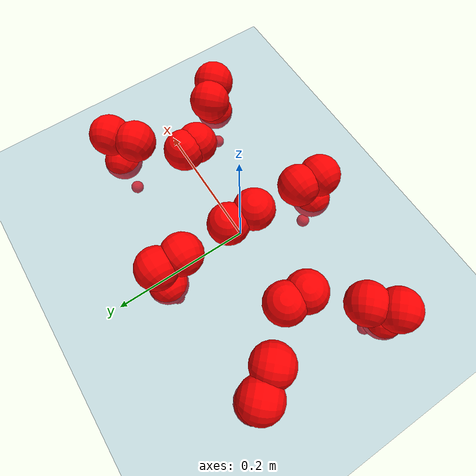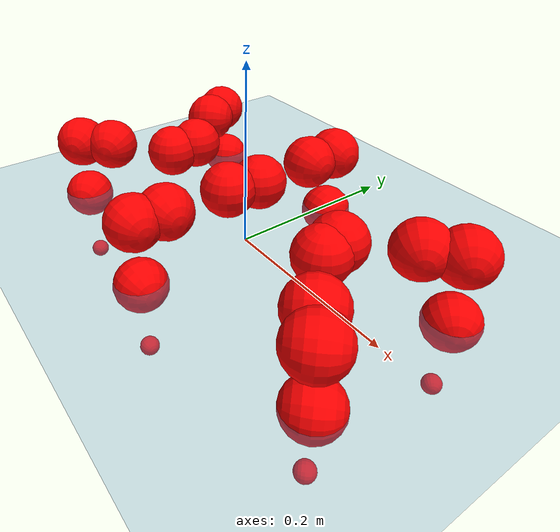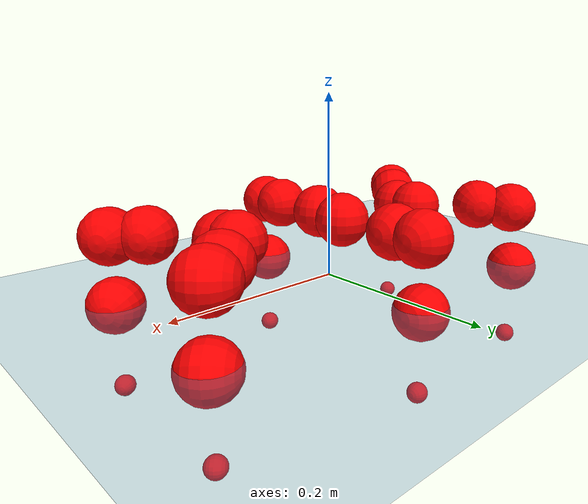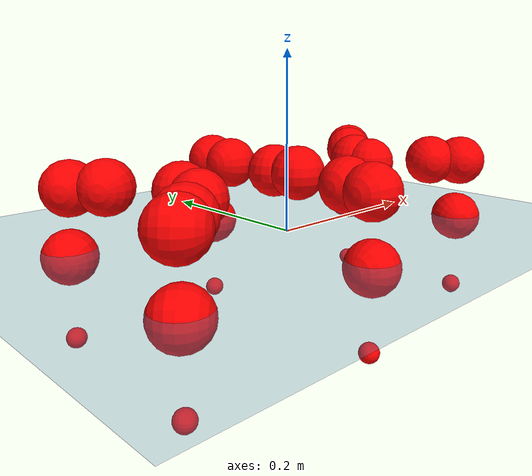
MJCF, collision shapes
<mujoco model="Golem">
  <compiler angle="radian" assetdir="assets" balanceinertia="true" inertiafromgeom="false"/>

  <option timestep="0.005" density="1.2" viscosity="2e-05"/>

  <size nkey="1"/>

  <visual>
    <quality shadowsize="8192"/>
    <map shadowclip="0.5"/>
  </visual>

  <default>
    <default class="/">
      <joint armature="0.01" damping="0.01" frictionloss="0.01"/>
      <geom contype="0" conaffinity="0" group="1" solref="-1000 -80"/>
      <site size="0.01 0.005 0.005" group="5"/>
      <general forcelimited="true" biastype="affine" gainprm="25" biasprm="0 -25 -0.5"/>
      <default class="visual">
        <geom type="mesh" group="2"/>
      </default>
      <default class="collision">
        <geom group="3"/>
      </default>
      <default class="foot">
        <geom size="0.01 0 0" condim="6" group="4" priority="1" solimp="0.015 1 0.01"/>
      </default>
      <default class="reward_collision_sphere">
        <geom group="5" rgba="1 0 0 1"/>
      </default>
    </default>
  </default>

  <asset>
    <texture type="skybox" colorspace="auto" name="//unnamed_texture_0" builtin="gradient" rgb1="0.95 0.95 0.95" rgb2="0.95 0.95 0.95" width="100" height="600"/>
    <texture type="2d" colorspace="auto" name="texplane" builtin="checker" rgb1="0.345 0.575 0.748" rgb2="0.345 0.575 0.748" markrgb="1 1 1" width="512" height="512"/>
    <material name="MatPlane" class="/" texture="texplane" texuniform="true" texrepeat="2 2" specular="0.9"/>
    <mesh name="body" class="/" file="body.stl" scale="0.001 0.001 0.001"/>
    <mesh name="coxa" class="/" file="coxa.stl" scale="0.001 0.001 0.001"/>
    <mesh name="femur" class="/" file="femur.stl" scale="0.001 0.001 0.001"/>
    <mesh name="tibia" class="/" file="tibia.stl" scale="0.001 0.001 0.001"/>
    <mesh name="tarsus" class="/" file="tarsus.stl" scale="0.001 0.001 0.001"/>
  </asset>

  <worldbody>
    <geom name="floor" class="/" size="100 100 0.125" type="plane" group="0" material="MatPlane"/>
    <light name="toplight_shadow" class="/" pos="0 0 5" dir="0.0990148 0.0990148 -0.990148" type="directional" ambient="0.04 0.04 0.04" diffuse="0.55 0.55 0.55" specular="0.12 0.12 0.12"/>
    <light name="toplight_fill" class="/" pos="0 0 5" dir="0.0990148 0.0990148 -0.990148" type="directional" castshadow="false" ambient="0.04 0.04 0.04" diffuse="0.3 0.3 0.3" specular="0.08 0.08 0.08"/>
    <body name="trunk" pos="0.000380886 -0.000429011 0.00189541" quat="1 0.000242093 -0.000331691 5.08039e-05">
      <inertial pos="0.0030295 0.000407094 -0.00244858" quat="1 -0.000210731 0.000786992 -0.000427229" mass="1.46068" diaginertia="0.00423276 5.5657e-05 0.0105465"/>
      <joint name="//unnamed_joint_0" type="free"/>
      <geom name="//unnamed_geom_1" class="/" pos="0 0 0.0642986" quat="1 0 0 0" type="mesh" rgba="0.9 0.9 0.9 1" mesh="body"/>
      <site name="imu" class="/" pos="0.108 -0.0130696 0.0984596" size="0.00732721"/>
      <camera name="track" class="/" pos="0 -0.711273 0" quat="0.707107 0.707107 0 0" mode="trackcom"/>
      <camera name="ego_camera" class="/" pos="0.108922 0 0.100467" quat="-0.5 -0.5 0.5 0.5"/>
      <body name="coxa_RR" pos="-0.148952 -0.0315591 0.0589992" quat="0.382928 -0.000275274 3.43855e-05 -0.923778">
        <inertial pos="-0.00115344 0.000872381 0.00158708" quat="0.999931 0.000246832 0.0115995 0.00173301" mass="0.0785608" diaginertia="0.00418157 5.72813e-05 0.0105546"/>
        <joint name="coxa_joint_RR" class="/" pos="0 0 0" axis="-0.00235288 0.00177511 -0.999996" stiffness="0.00612143" range="-3.17096 3.1318" armature="0.00729709" damping="0" frictionloss="0.00827169"/>
        <geom name="//unnamed_geom_2" class="/" type="mesh" rgba="0.2 0.2 0.2 1" mesh="coxa"/>
        <geom name="//unnamed_geom_3" class="reward_collision_sphere" size="0.0293089" pos="-0.0251358 0 0"/>
        <body name="femur_RR" pos="0.0504404 -0.000154987 0.00244562" quat="0.499786 -0.499866 0.500319 0.500028">
          <inertial pos="-0.00045686 0.00072728 -0.00182254" quat="0.999996 0.00119356 -0.00211684 0.00174104" mass="0.0780722" diaginertia="0.00428987 5.90565e-05 0.00996016"/>
          <joint name="femur_joint_RR" class="/" pos="0 0 0" axis="0.00268324 0.0135643 -0.999904" range="-3.13131 3.12095" armature="0.00704057" damping="0" frictionloss="0.00644016"/>
          <geom name="//unnamed_geom_4" class="/" type="mesh" rgba="0.9 0.9 0.9 1" mesh="femur"/>
          <geom name="//unnamed_geom_5" class="reward_collision_sphere" size="0.0293089"/>
          <body name="tibia_RR" pos="-0.000622307 -0.0389636 0.000194892" quat="-0.000518469 1 -0.00041098 -0.000723682">
            <inertial pos="0.0015526 0.00260553 0.000788749" quat="0.999997 0.000983438 -0.000512496 -0.00226217" mass="0.0802145" diaginertia="0.00400762 5.68008e-05 0.0101134"/>
            <joint name="tibia_joint_RR" class="/" pos="0 0 0" axis="-0.000567685 0.000884799 0.999999" stiffness="0.00962272" range="-3.13713 3.12139" armature="0.00686162" damping="0.00617173" frictionloss="0.00702577"/>
            <geom name="//unnamed_geom_6" class="/" type="mesh" rgba="0.2 0.2 0.2 1" mesh="tibia"/>
            <geom name="//unnamed_geom_7" class="reward_collision_sphere" size="0.0293089"/>
            <body name="tarsus_RR" pos="0.0728482 0.00188573 -0.00106231" quat="0.999999 0.000868233 0.000230306 0.00107268">
              <inertial pos="0.0494068 -0.000231182 0.00106862" quat="0.503278 0.49837 0.501427 0.496899" mass="0.0811624" diaginertia="0.00441152 5.69244e-05 0.0109147"/>
              <joint name="tarsus_joint_RR" class="/" pos="0 0 0" axis="-0.00280947 0.00560629 0.99998" range="-3.19571 3.12422" armature="0.00660479" damping="0.0129753" frictionloss="0.00776833"/>
              <geom name="//unnamed_geom_8" class="/" type="mesh" rgba="0.9 0.9 0.9 1" mesh="tarsus"/>
              <geom name="foot_1" class="foot" size="0.00788869" pos="0.0938405 0 0" quat="0 -0.707107 0 0.707107"/>
              <geom name="//unnamed_geom_10" class="reward_collision_sphere" size="0.0293089"/>
              <geom name="//unnamed_geom_11" class="reward_collision_sphere" size="0.0109908" pos="0.0900701 0 0"/>
              <site name="foot_1" class="foot" pos="0.0938405 0 0" quat="0 -0.707107 0 0.707107" size="0.00732721"/>
            </body>
          </body>
        </body>
      </body>
      <body name="coxa_RM" pos="-0.00378496 -0.0447731 0.0678898" quat="0.707021 -0.000131029 0.000116518 -0.707192">
        <inertial pos="0.00280572 -0.000779679 0.00289754" quat="0.999997 0.00237558 0.000846379 6.72256e-05" mass="0.0756604" diaginertia="0.00401407 5.59566e-05 0.010074"/>
        <joint name="coxa_joint_RM" class="/" pos="0 0 0" axis="0.00346904 0.00132443 -0.999993" range="-3.14586 3.16511" armature="0.00712972" damping="0.0135838" frictionloss="0.00657712"/>
        <geom name="//unnamed_geom_12" class="/" type="mesh" rgba="0.2 0.2 0.2 1" mesh="coxa"/>
        <geom name="//unnamed_geom_13" class="reward_collision_sphere" size="0.0293089" pos="-0.0251358 0 0"/>
        <body name="femur_RM" pos="0.0466381 -0.00304363 -0.00206907" quat="0.500061 -0.500038 0.499985 0.499916">
          <inertial pos="0.00245012 0.00173498 -9.74108e-05" quat="0.999956 0.000168561 0.00644584 0.00678217" mass="0.0833419" diaginertia="0.00423409 5.61766e-05 0.0101063"/>
          <joint name="femur_joint_RM" class="/" pos="0 0 0" axis="-0.0120732 -0.00433711 -0.999918" range="-3.1958 3.16028" armature="0.00740592" damping="0.0204578" frictionloss="0.00815107"/>
          <geom name="//unnamed_geom_14" class="/" type="mesh" rgba="0.9 0.9 0.9 1" mesh="femur"/>
          <geom name="//unnamed_geom_15" class="reward_collision_sphere" size="0.0293089"/>
          <body name="tibia_RM" pos="0.00115479 -0.0337778 -0.00304313" quat="-9.62311e-05 1 -0.000149808 -4.84967e-05">
            <inertial pos="0.00278108 -0.00333442 -0.000743982" quat="0.999985 -0.000542248 0.000137098 -0.00543605" mass="0.0785009" diaginertia="0.00410325 5.5605e-05 0.0102668"/>
            <joint name="tibia_joint_RM" class="/" pos="0 0 0" axis="0.000679866 0.00481042 0.999988" range="-3.11472 3.08361" armature="0.00748269" damping="0.0220224" frictionloss="0.0071447"/>
            <geom name="//unnamed_geom_16" class="/" type="mesh" rgba="0.2 0.2 0.2 1" mesh="tibia"/>
            <geom name="//unnamed_geom_17" class="reward_collision_sphere" size="0.0293089"/>
            <body name="tarsus_RM" pos="0.076439 0.00105658 -0.00128201" quat="1 8.79958e-06 -1.67043e-05 2.31045e-05">
              <inertial pos="0.052947 -0.0018656 0.000343916" quat="0.503344 0.497651 0.506693 0.492191" mass="0.0799406" diaginertia="0.0042674 5.87932e-05 0.00992233"/>
              <joint name="tarsus_joint_RM" class="/" pos="0 0 0" axis="0.000682414 0.00145836 0.999999" stiffness="0.00723599" range="-3.13793 3.19497" armature="0.00699216" damping="0.00808131" frictionloss="0.00700022"/>
              <geom name="//unnamed_geom_18" class="/" type="mesh" rgba="0.9 0.9 0.9 1" mesh="tarsus"/>
              <geom name="foot_2" class="foot" size="0.00743431" pos="0.0938405 0 0" quat="0 -0.707107 0 0.707107"/>
              <geom name="//unnamed_geom_20" class="reward_collision_sphere" size="0.0293089"/>
              <geom name="//unnamed_geom_21" class="reward_collision_sphere" size="0.0109908" pos="0.0900701 0 0"/>
              <site name="foot_2" class="foot" pos="0.0938405 0 0" quat="0 -0.707107 0 0.707107" size="0.00732721"/>
            </body>
          </body>
        </body>
      </body>
      <body name="coxa_RF" pos="0.148478 -0.0284016 0.0624389" quat="0.923954 0.000248148 -0.000604294 -0.382503">
        <inertial pos="-0.00184352 0.00105425 0.00279655" quat="0.999948 -0.00168582 -0.00913318 -0.00432514" mass="0.0765512" diaginertia="0.00424815 5.80626e-05 0.0102435"/>
        <joint name="coxa_joint_RF" class="/" pos="0 0 0" axis="0.00504823 0.000855935 -0.999987" range="-3.19576 3.14562" armature="0.00645215" damping="0.0253653" frictionloss="0.00721282"/>
        <geom name="//unnamed_geom_22" class="/" type="mesh" rgba="0.2 0.2 0.2 1" mesh="coxa"/>
        <geom name="//unnamed_geom_23" class="reward_collision_sphere" size="0.0293089" pos="-0.0251358 0 0"/>
        <body name="femur_RF" pos="0.0484161 -0.00213707 0.00340876" quat="0.499779 -0.500178 0.499968 0.500074">
          <inertial pos="-0.000207542 -0.00194031 0.000425405" quat="1 -0.000156913 -6.95466e-05 0.000251125" mass="0.0772538" diaginertia="0.00402816 5.72686e-05 0.0100972"/>
          <joint name="femur_joint_RF" class="/" pos="0 0 0" axis="0.00471469 -0.0117796 -0.99992" range="-3.09641 3.13938" armature="0.00777943" damping="0" frictionloss="0.00714553"/>
          <geom name="//unnamed_geom_24" class="/" type="mesh" rgba="0.9 0.9 0.9 1" mesh="femur"/>
          <geom name="//unnamed_geom_25" class="reward_collision_sphere" size="0.0293089"/>
          <body name="tibia_RF" pos="0.00098656 -0.0371518 0.00290081" quat="9.84454e-05 1 0.00043416 -0.000887536">
            <inertial pos="0.00123965 0.00277411 -0.00274451" quat="0.999937 -0.0103652 0.0032663 -0.00284585" mass="0.0790878" diaginertia="0.00415167 5.51091e-05 0.00975357"/>
            <joint name="tibia_joint_RF" class="/" pos="0 0 0" axis="-0.00180561 -0.00391661 0.999991" stiffness="0.00520794" range="-3.17291 3.15334" armature="0.00633629" damping="0.00561351" frictionloss="0.00738187"/>
            <geom name="//unnamed_geom_26" class="/" type="mesh" rgba="0.2 0.2 0.2 1" mesh="tibia"/>
            <geom name="//unnamed_geom_27" class="reward_collision_sphere" size="0.0293089"/>
            <body name="tarsus_RF" pos="0.0710423 -0.000283663 -0.00266605" quat="1 0.000254344 -3.78452e-05 0.000113759">
              <inertial pos="0.0501952 -0.000521569 -0.000670779" quat="0.49555 0.4961 0.500901 0.507359" mass="0.0758362" diaginertia="0.00414027 5.62292e-05 0.0101044"/>
              <joint name="tarsus_joint_RF" class="/" pos="0 0 0" axis="-2.8511e-05 -0.000189808 1" stiffness="0.00147027" range="-3.13925 3.1789" armature="0.00742311" damping="0.0167529" frictionloss="0.00815502"/>
              <geom name="//unnamed_geom_28" class="/" type="mesh" rgba="0.9 0.9 0.9 1" mesh="tarsus"/>
              <geom name="foot_3" class="foot" size="0.00794652" pos="0.0938405 0 0" quat="0 -0.707107 0 0.707107"/>
              <geom name="//unnamed_geom_30" class="reward_collision_sphere" size="0.0293089"/>
              <geom name="//unnamed_geom_31" class="reward_collision_sphere" size="0.0109908" pos="0.0900701 0 0"/>
              <site name="foot_3" class="foot" pos="0.0938405 0 0" quat="0 -0.707107 0 0.707107" size="0.00732721"/>
            </body>
          </body>
        </body>
      </body>
      <body name="coxa_LR" pos="-0.146516 0.0354518 0.0617634" quat="0.382443 8.3884e-05 8.10376e-05 0.923979">
        <inertial pos="0.000790084 -0.00194378 -0.00240715" quat="0.999963 -0.00392145 0.00614524 -0.00450257" mass="0.0804997" diaginertia="0.0042545 5.79133e-05 0.0104217"/>
        <joint name="coxa_joint_LR" class="/" pos="0 0 0" axis="0.000703172 -0.000516922 -1" range="-3.17 3.13247" armature="0.00625819" damping="0.0152921" frictionloss="0.00763323"/>
        <geom name="//unnamed_geom_32" class="/" type="mesh" rgba="0.2 0.2 0.2 1" mesh="coxa"/>
        <geom name="//unnamed_geom_33" class="reward_collision_sphere" size="0.0293089" pos="-0.0251358 0 0"/>
        <body name="femur_LR" pos="0.0496876 -0.00232428 0.00223938" quat="0.499935 -0.499895 0.499898 0.500271">
          <inertial pos="0.00278575 -0.000673919 -0.00159073" quat="0.999991 0.00403918 0.000311541 0.00157519" mass="0.0782315" diaginertia="0.00414423 5.67812e-05 0.0106417"/>
          <joint name="femur_joint_LR" class="/" pos="0 0 0" axis="0.00177659 0.00172146 0.999997" range="-3.08409 3.12062" armature="0.00765103" damping="0.00828473" frictionloss="0.00713634"/>
          <geom name="//unnamed_geom_34" class="/" type="mesh" rgba="0.9 0.9 0.9 1" mesh="femur"/>
          <geom name="//unnamed_geom_35" class="reward_collision_sphere" size="0.0293089"/>
          <body name="tibia_LR" pos="0.00249183 -0.0391222 -0.00682167" quat="-9.84705e-05 1 -0.000238617 5.87861e-05">
            <inertial pos="0.0027894 -0.00382825 0.00396606" quat="0.999944 -0.0067469 0.00402015 -0.0071123" mass="0.0748094" diaginertia="0.00406402 5.74668e-05 0.010103"/>
            <joint name="tibia_joint_LR" class="/" pos="0 0 0" axis="0.001253 -0.00311311 -0.999994" range="-3.09421 3.12192" armature="0.007289" damping="0.0106305" frictionloss="0.00632019"/>
            <geom name="//unnamed_geom_36" class="/" type="mesh" rgba="0.2 0.2 0.2 1" mesh="tibia"/>
            <geom name="//unnamed_geom_37" class="reward_collision_sphere" size="0.0293089"/>
            <body name="tarsus_LR" pos="0.0731044 0.00588999 0.00358447" quat="0.999999 -0.000633283 0.000481947 -0.000619335">
              <inertial pos="0.0498375 -0.00180757 -0.000920116" quat="0.501897 0.4958 0.501799 0.500479" mass="0.0803338" diaginertia="0.00422068 5.60124e-05 0.0103075"/>
              <joint name="tarsus_joint_LR" class="/" pos="0 0 0" axis="0.0120945 0.00113456 -0.999926" range="-3.13272 3.13069" armature="0.00741317" damping="0.0152467" frictionloss="0.00755632"/>
              <geom name="//unnamed_geom_38" class="/" type="mesh" rgba="0.9 0.9 0.9 1" mesh="tarsus"/>
              <geom name="foot_4" class="foot" size="0.00708963" pos="0.0938405 0 0" quat="0.707107 0 -0.707107 0"/>
              <geom name="//unnamed_geom_40" class="reward_collision_sphere" size="0.0293089"/>
              <geom name="//unnamed_geom_41" class="reward_collision_sphere" size="0.0109908" pos="0.0900701 0 0"/>
              <site name="foot_4" class="foot" pos="0.0938405 0 0" quat="0.707107 0 -0.707107 0" size="0.00732721"/>
            </body>
          </body>
        </body>
      </body>
      <body name="coxa_LM" pos="-0.00174828 0.0446188 0.0651453" quat="0.707253 -3.9493e-05 0.000438661 0.706961">
        <inertial pos="-0.00247624 -0.00032512 0.00264123" quat="1 4.83641e-06 -1.78334e-05 6.2715e-06" mass="0.0751917" diaginertia="0.00405617 5.63455e-05 0.0104665"/>
        <joint name="coxa_joint_LM" class="/" pos="0 0 0" axis="-0.00106035 -0.00308069 -0.999995" range="-3.16763 3.11151" armature="0.00643663" damping="0.0161763" frictionloss="0.00792392"/>
        <geom name="//unnamed_geom_42" class="/" type="mesh" rgba="0.2 0.2 0.2 1" mesh="coxa"/>
        <geom name="//unnamed_geom_43" class="reward_collision_sphere" size="0.0293089" pos="-0.0251358 0 0"/>
        <body name="femur_LM" pos="0.0478802 0.00262329 0.000265012" quat="0.500106 -0.499936 0.499911 0.500047">
          <inertial pos="0.000252182 -0.0020879 -0.00031978" quat="0.999916 -0.0092907 0.00891219 0.00113871" mass="0.0769358" diaginertia="0.00402042 5.63449e-05 0.010141"/>
          <joint name="femur_joint_LM" class="/" pos="0 0 0" axis="-0.0135347 0.00555681 0.999893" stiffness="0.0114074" range="-3.10218 3.14611" armature="0.00624554" damping="0.0137039" frictionloss="0.00822184"/>
          <geom name="//unnamed_geom_44" class="/" type="mesh" rgba="0.9 0.9 0.9 1" mesh="femur"/>
          <geom name="//unnamed_geom_45" class="reward_collision_sphere" size="0.0293089"/>
          <body name="tibia_LM" pos="-0.000666833 -0.0362668 -0.00111815" quat="0.000210928 1 8.94982e-05 -0.000160813">
            <inertial pos="0.000113993 -0.00098487 -1.78445e-05" quat="1 0.000417383 -0.000183951 -0.000303379" mass="0.0816919" diaginertia="0.00412854 5.71702e-05 0.0103792"/>
            <joint name="tibia_joint_LM" class="/" pos="0 0 0" axis="-0.00220491 -0.00186238 -0.999996" stiffness="0.005297" range="-3.10069 3.14531" armature="0.00752864" damping="0.00197387" frictionloss="0.00634684"/>
            <geom name="//unnamed_geom_46" class="/" type="mesh" rgba="0.2 0.2 0.2 1" mesh="tibia"/>
            <geom name="//unnamed_geom_47" class="reward_collision_sphere" size="0.0293089"/>
            <body name="tarsus_LM" pos="0.0771992 -0.000784711 -0.00297444" quat="1 0.000161138 0.000405585 1.97374e-05">
              <inertial pos="0.0476832 -0.00157679 -0.000240669" quat="0.499989 0.499923 0.500032 0.500056" mass="0.0771286" diaginertia="0.00416325 5.76803e-05 0.0105386"/>
              <joint name="tarsus_joint_LM" class="/" pos="0 0 0" axis="-0.00644039 0.0038494 -0.999972" range="-3.09516 3.09795" armature="0.00738463" damping="0.00284055" frictionloss="0.00679572"/>
              <geom name="//unnamed_geom_48" class="/" type="mesh" rgba="0.9 0.9 0.9 1" mesh="tarsus"/>
              <geom name="foot_5" class="foot" size="0.00759912" pos="0.0938405 0 0" quat="0.707107 0 -0.707107 0"/>
              <geom name="//unnamed_geom_50" class="reward_collision_sphere" size="0.0293089"/>
              <geom name="//unnamed_geom_51" class="reward_collision_sphere" size="0.0109908" pos="0.0900701 0 0"/>
              <site name="foot_5" class="foot" pos="0.0938405 0 0" quat="0.707107 0 -0.707107 0" size="0.00732721"/>
            </body>
          </body>
        </body>
      </body>
      <body name="coxa_LF" pos="0.145822 0.0288439 0.065478" quat="0.9241 0.00116418 0.000454353 0.382148">
        <inertial pos="-0.000268524 -0.00196957 -0.000310182" quat="0.999954 -0.00608473 0.00172883 0.00720651" mass="0.0760056" diaginertia="0.00402292 5.4865e-05 0.00995847"/>
        <joint name="coxa_joint_LF" class="/" pos="0 0 0" axis="0.00466515 -0.00177903 -0.999988" range="-3.18397 3.08544" armature="0.00753016" damping="0.00267935" frictionloss="0.00834038"/>
        <geom name="//unnamed_geom_52" class="/" type="mesh" rgba="0.2 0.2 0.2 1" mesh="coxa"/>
        <geom name="//unnamed_geom_53" class="reward_collision_sphere" size="0.0293089" pos="-0.0251358 0 0"/>
        <body name="femur_LF" pos="0.0474079 0.000643828 0.000756227" quat="0.499123 -0.499675 0.500313 0.500887">
          <inertial pos="0.00137755 -0.00034061 -0.000499497" quat="0.999995 -0.0015974 -0.00248848 -0.00143147" mass="0.0793096" diaginertia="0.00402855 5.68764e-05 0.00996612"/>
          <joint name="femur_joint_LF" class="/" pos="0 0 0" axis="-0.0121564 -0.00770144 0.999896" range="-3.15849 3.08291" armature="0.00749568" damping="0.0110163" frictionloss="0.00767855"/>
          <geom name="//unnamed_geom_54" class="/" type="mesh" rgba="0.9 0.9 0.9 1" mesh="femur"/>
          <geom name="//unnamed_geom_55" class="reward_collision_sphere" size="0.0293089"/>
          <body name="tibia_LF" pos="0.000737581 -0.0389221 -0.00323989" quat="0.000191593 1 -0.000228426 5.09762e-05">
            <inertial pos="0.0012271 -5.11234e-05 -0.00109826" quat="0.999903 0.00608084 0.00160781 -0.0124325" mass="0.0807881" diaginertia="0.00399327 5.47446e-05 0.00985438"/>
            <joint name="tibia_joint_LF" class="/" pos="0 0 0" axis="0.0139613 0.00297469 -0.999898" stiffness="0.0045716" range="-3.13151 3.12285" armature="0.00842086" damping="0.00667173" frictionloss="0.00648054"/>
            <geom name="//unnamed_geom_56" class="/" type="mesh" rgba="0.2 0.2 0.2 1" mesh="tibia"/>
            <geom name="//unnamed_geom_57" class="reward_collision_sphere" size="0.0293089"/>
            <body name="tarsus_LF" pos="0.0760744 0.00226728 0.00244503" quat="1 -0.00038259 5.0888e-05 -0.000131987">
              <inertial pos="0.0484383 0.00118209 -0.000278369" quat="0.500993 0.50049 0.49876 0.499754" mass="0.0747481" diaginertia="0.00410899 5.50707e-05 0.00987676"/>
              <joint name="tarsus_joint_LF" class="/" pos="0 0 0" axis="0.00977321 -0.00196225 -0.99995" stiffness="0.0354024" range="-3.13352 3.19099" armature="0.00759481" damping="0.0304409" frictionloss="0.00746814"/>
              <geom name="//unnamed_geom_58" class="/" type="mesh" rgba="0.9 0.9 0.9 1" mesh="tarsus"/>
              <geom name="foot_6" class="foot" size="0.00737006" pos="0.0938405 0 0" quat="0.707107 0 -0.707107 0"/>
              <geom name="//unnamed_geom_60" class="reward_collision_sphere" size="0.0293089"/>
              <geom name="//unnamed_geom_61" class="reward_collision_sphere" size="0.0109908" pos="0.0900701 0 0"/>
              <site name="foot_6" class="foot" pos="0.0938405 0 0" quat="0.707107 0 -0.707107 0" size="0.00732721"/>
            </body>
          </body>
        </body>
      </body>
    </body>
  </worldbody>

  <contact>
    <pair class="/" geom1="floor" geom2="foot_1" name="//unnamed_contact_0"/>
    <pair class="/" geom1="floor" geom2="foot_2" name="//unnamed_contact_1"/>
    <pair class="/" geom1="floor" geom2="foot_3" name="//unnamed_contact_2"/>
    <pair class="/" geom1="floor" geom2="foot_4" name="//unnamed_contact_3"/>
    <pair class="/" geom1="floor" geom2="foot_5" name="//unnamed_contact_4"/>
    <pair class="/" geom1="floor" geom2="foot_6" name="//unnamed_contact_5"/>
  </contact>

  <actuator>
    <general name="coxa_joint_RR" class="/" joint="coxa_joint_RR" forcerange="-5.75864 5.75864" gainprm="18.4491" biasprm="0 -18.4491 -0.374512"/>
    <general name="femur_joint_RR" class="/" joint="femur_joint_RR" forcerange="-5.9114 5.9114" gainprm="18.4491" biasprm="0 -18.4491 -0.374512"/>
    <general name="tibia_joint_RR" class="/" joint="tibia_joint_RR" forcerange="-4.96783 4.96783" gainprm="18.4491" biasprm="0 -18.4491 -0.374512"/>
    <general name="tarsus_joint_RR" class="/" joint="tarsus_joint_RR" forcerange="-5.60895 5.60895" gainprm="18.4491" biasprm="0 -18.4491 -0.374512"/>
    <general name="coxa_joint_RM" class="/" joint="coxa_joint_RM" forcerange="-5.743 5.743" gainprm="18.4491" biasprm="0 -18.4491 -0.374512"/>
    <general name="femur_joint_RM" class="/" joint="femur_joint_RM" forcerange="-5.61001 5.61001" gainprm="18.4491" biasprm="0 -18.4491 -0.374512"/>
    <general name="tibia_joint_RM" class="/" joint="tibia_joint_RM" forcerange="-4.78449 4.78449" gainprm="18.4491" biasprm="0 -18.4491 -0.374512"/>
    <general name="tarsus_joint_RM" class="/" joint="tarsus_joint_RM" forcerange="-5.26079 5.26079" gainprm="18.4491" biasprm="0 -18.4491 -0.374512"/>
    <general name="coxa_joint_RF" class="/" joint="coxa_joint_RF" forcerange="-5.46119 5.46119" gainprm="18.4491" biasprm="0 -18.4491 -0.374512"/>
    <general name="femur_joint_RF" class="/" joint="femur_joint_RF" forcerange="-5.24576 5.24576" gainprm="18.4491" biasprm="0 -18.4491 -0.374512"/>
    <general name="tibia_joint_RF" class="/" joint="tibia_joint_RF" forcerange="-4.7904 4.7904" gainprm="18.4491" biasprm="0 -18.4491 -0.374512"/>
    <general name="tarsus_joint_RF" class="/" joint="tarsus_joint_RF" forcerange="-5.17969 5.17969" gainprm="18.4491" biasprm="0 -18.4491 -0.374512"/>
    <general name="coxa_joint_LR" class="/" joint="coxa_joint_LR" forcerange="-5.91092 5.91092" gainprm="18.4491" biasprm="0 -18.4491 -0.374512"/>
    <general name="femur_joint_LR" class="/" joint="femur_joint_LR" forcerange="-4.90761 4.90761" gainprm="18.4491" biasprm="0 -18.4491 -0.374512"/>
    <general name="tibia_joint_LR" class="/" joint="tibia_joint_LR" forcerange="-4.78693 4.78693" gainprm="18.4491" biasprm="0 -18.4491 -0.374512"/>
    <general name="tarsus_joint_LR" class="/" joint="tarsus_joint_LR" forcerange="-5.28799 5.28799" gainprm="18.4491" biasprm="0 -18.4491 -0.374512"/>
    <general name="coxa_joint_LM" class="/" joint="coxa_joint_LM" forcerange="-5.40947 5.40947" gainprm="18.4491" biasprm="0 -18.4491 -0.374512"/>
    <general name="femur_joint_LM" class="/" joint="femur_joint_LM" forcerange="-5.36636 5.36636" gainprm="18.4491" biasprm="0 -18.4491 -0.374512"/>
    <general name="tibia_joint_LM" class="/" joint="tibia_joint_LM" forcerange="-5.42395 5.42395" gainprm="18.4491" biasprm="0 -18.4491 -0.374512"/>
    <general name="tarsus_joint_LM" class="/" joint="tarsus_joint_LM" forcerange="-5.33391 5.33391" gainprm="18.4491" biasprm="0 -18.4491 -0.374512"/>
    <general name="coxa_joint_LF" class="/" joint="coxa_joint_LF" forcerange="-5.59724 5.59724" gainprm="18.4491" biasprm="0 -18.4491 -0.374512"/>
    <general name="femur_joint_LF" class="/" joint="femur_joint_LF" forcerange="-5.55402 5.55402" gainprm="18.4491" biasprm="0 -18.4491 -0.374512"/>
    <general name="tibia_joint_LF" class="/" joint="tibia_joint_LF" forcerange="-5.50972 5.50972" gainprm="18.4491" biasprm="0 -18.4491 -0.374512"/>
    <general name="tarsus_joint_LF" class="/" joint="tarsus_joint_LF" forcerange="-4.90983 4.90983" gainprm="18.4491" biasprm="0 -18.4491 -0.374512"/>
  </actuator>

  <sensor>
    <gyro site="imu" name="imu_angular_velocity"/>
    <velocimeter site="imu" name="imu_linear_velocity"/>
    <framelinvel objtype="site" objname="foot_1" name="foot_1_global_linear_velocity"/>
    <framelinvel objtype="site" objname="foot_2" name="foot_2_global_linear_velocity"/>
    <framelinvel objtype="site" objname="foot_3" name="foot_3_global_linear_velocity"/>
    <framelinvel objtype="site" objname="foot_4" name="foot_4_global_linear_velocity"/>
    <framelinvel objtype="site" objname="foot_5" name="foot_5_global_linear_velocity"/>
    <framelinvel objtype="site" objname="foot_6" name="foot_6_global_linear_velocity"/>
  </sensor>

  <keyframe>
    <key name="home" qpos="0 0 0.1457 1 0 0 0 0 0 0 0 0 0 0 0 0 0 0 0 0 0 0 0 0 0 0 0 0 0 0 0"/>
  </keyframe>
</mujoco>
